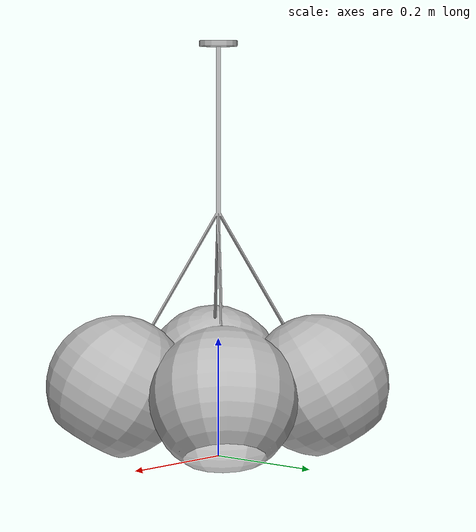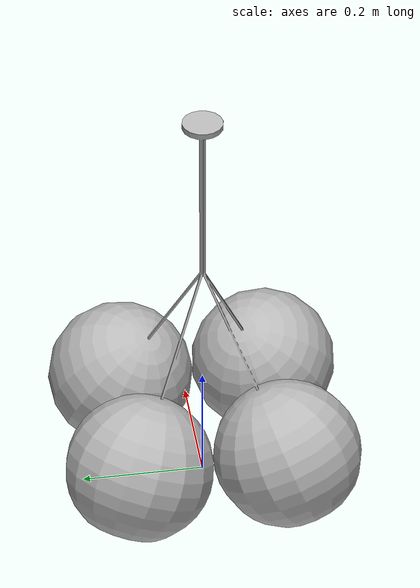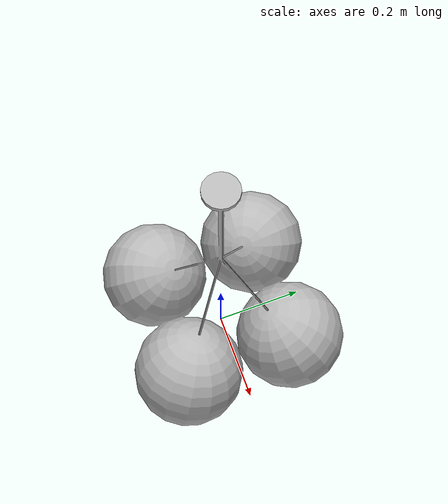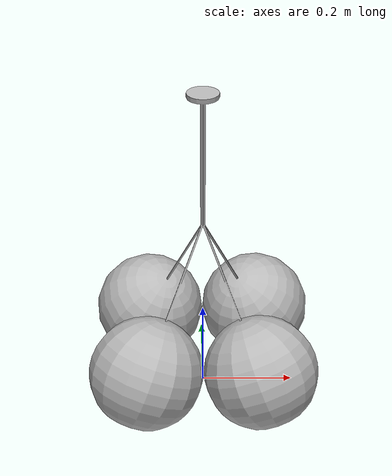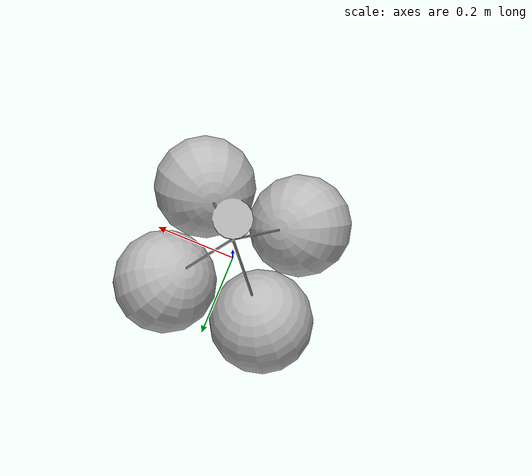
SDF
<?xml version='1.0'?>
<sdf version='1.4'>
  <model name='632'>
    <pose>0 0 0 0 0 0</pose>
    <static>true</static>
    <link name='link'>
      <collision name='collision'>
        <pose>0 0 0 0 0 0</pose>
        <geometry>
          <box>
            <size>0.48 0.48 0</size>
          </box>
        </geometry>
      </collision>
      <visual name='visual'>
        <pose>0 0 0 0 0 0</pose>
        <geometry>
          <mesh><uri>model://632/632.dae</uri></mesh>
        </geometry>
      </visual>
    </link>
  </model>
</sdf>
